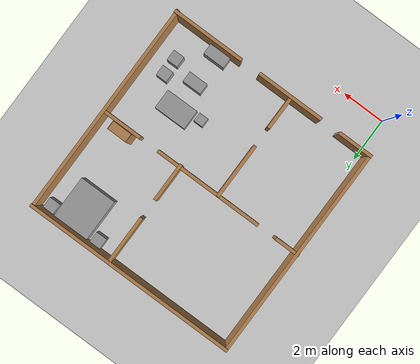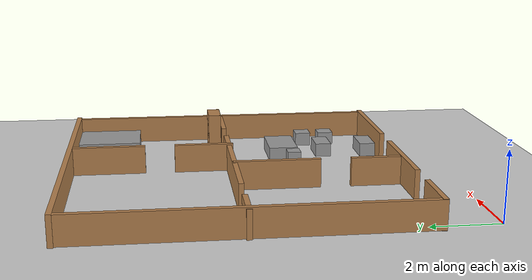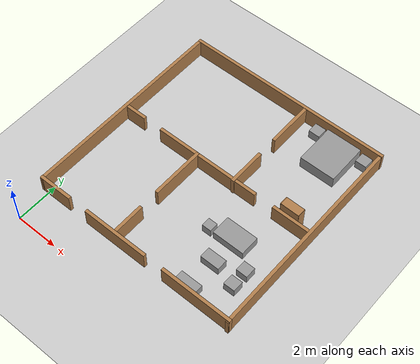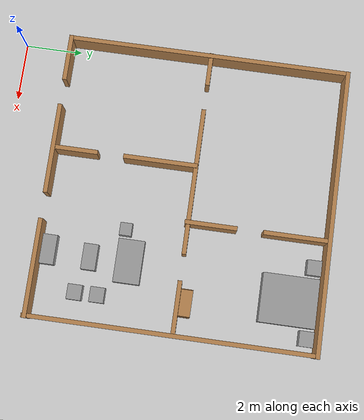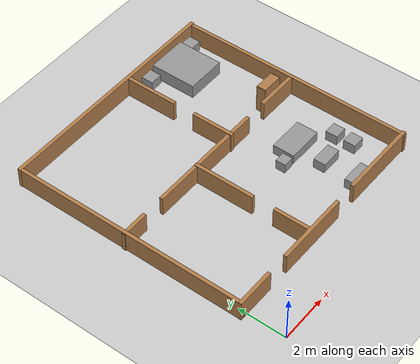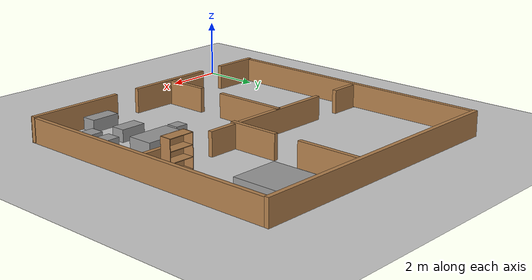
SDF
<sdf version="1.7">
 <world name="default">
  <model name="ground_plane">
   <static>1</static>
   <link name="link">
    <collision name="collision">
     <geometry><plane><normal>0 0 1</normal><size>100 100</size></plane></geometry>
     <surface>
      <contact><collide_bitmask>65535</collide_bitmask></contact>
      <friction><ode><mu>100</mu><mu2>50</mu2></ode></friction>
     </surface>
    </collision>
    <visual name="visual">
     <cast_shadows>0</cast_shadows>
     <geometry><plane><normal>0 0 1</normal><size>100 100</size></plane></geometry>
     <material>
      <script><uri>file://media/materials/scripts/gazebo.material</uri><name>Gazebo/Grey</name></script>
     </material>
    </visual>
   </link>
  </model>
  <model name="unit_box">
   <link name="link">
    <inertial>
     <mass>1</mass>
     <inertia>
      <ixx>0.166667</ixx>
      <ixy>0</ixy>
      <ixz>0</ixz>
      <iyy>0.166667</iyy>
      <iyz>0</iyz>
      <izz>0.166667</izz>
     </inertia>
    </inertial>
    <visual name="visual">
     <geometry><box><size>1.68417 1.93569 0.590711</size></box></geometry>
     <material>
      <script><name>Gazebo/Grey</name><uri>file://media/materials/scripts/gazebo.material</uri></script>
      <shader type="pixel"><normal_map>__default__</normal_map></shader>
      <ambient>0.933 0.933 0.925 1</ambient>
      <diffuse>0.7 0.7 0.7 1</diffuse>
      <specular>0.01 0.01 0.01 1</specular>
      <emissive>0 0 0 1</emissive>
     </material>
    </visual>
    <collision name="collision">
     <geometry><box><size>1.68417 1.93569 0.590711</size></box></geometry>
     <surface>
      <friction>
       <ode><mu>1</mu><mu2>1</mu2><fdir1>0 0 0</fdir1><slip1>0</slip1><slip2>0</slip2></ode>
       <torsional>
        <coefficient>1</coefficient>
        <patch_radius>0</patch_radius>
        <surface_radius>0</surface_radius>
        <use_patch_radius>1</use_patch_radius>
        <ode><slip>0</slip></ode>
       </torsional>
      </friction>
      <bounce><restitution_coefficient>0</restitution_coefficient><threshold>1e+06</threshold></bounce>
      <contact>
       <collide_without_contact>0</collide_without_contact>
       <collide_without_contact_bitmask>1</collide_without_contact_bitmask>
       <collide_bitmask>1</collide_bitmask>
       <ode>
        <soft_cfm>0</soft_cfm>
        <soft_erp>0.2</soft_erp>
        <kp>1e+13</kp>
        <kd>1</kd>
        <max_vel>0.01</max_vel>
        <min_depth>0</min_depth>
       </ode>
       <bullet>
        <split_impulse>1</split_impulse>
        <split_impulse_penetration_threshold>-0.01</split_impulse_penetration_threshold>
        <soft_cfm>0</soft_cfm>
        <soft_erp>0.2</soft_erp>
        <kp>1e+13</kp>
        <kd>1</kd>
       </bullet>
      </contact>
     </surface>
    </collision>
   </link>
   <static>0</static>
   <pose>7.86164 10.4166 0.295328 2.8e-05 0 0.001427</pose>
  </model>
  <model name="unit_box_clone">
   <link name="link">
    <inertial>
     <mass>1</mass>
     <inertia>
      <ixx>0.166667</ixx>
      <ixy>0</ixy>
      <ixz>0</ixz>
      <iyy>0.166667</iyy>
      <iyz>0</iyz>
      <izz>0.166667</izz>
     </inertia>
    </inertial>
    <visual name="visual">
     <geometry><box><size>0.525272 0.502179 0.423961</size></box></geometry>
     <material>
      <script><name>Gazebo/Grey</name><uri>file://media/materials/scripts/gazebo.material</uri></script>
      <shader type="pixel"><normal_map>__default__</normal_map></shader>
      <ambient>0.933 0.933 0.925 1</ambient>
      <diffuse>0.7 0.7 0.7 1</diffuse>
      <specular>0.01 0.01 0.01 1</specular>
      <emissive>0 0 0 1</emissive>
     </material>
    </visual>
    <collision name="collision">
     <geometry><box><size>0.525272 0.502179 0.423961</size></box></geometry>
     <surface>
      <friction>
       <ode><mu>1</mu><mu2>1</mu2><fdir1>0 0 0</fdir1><slip1>0</slip1><slip2>0</slip2></ode>
       <torsional>
        <coefficient>1</coefficient>
        <patch_radius>0</patch_radius>
        <surface_radius>0</surface_radius>
        <use_patch_radius>1</use_patch_radius>
        <ode><slip>0</slip></ode>
       </torsional>
      </friction>
      <bounce><restitution_coefficient>0</restitution_coefficient><threshold>1e+06</threshold></bounce>
      <contact>
       <collide_without_contact>0</collide_without_contact>
       <collide_without_contact_bitmask>1</collide_without_contact_bitmask>
       <collide_bitmask>1</collide_bitmask>
       <ode>
        <soft_cfm>0</soft_cfm>
        <soft_erp>0.2</soft_erp>
        <kp>1e+13</kp>
        <kd>1</kd>
        <max_vel>0.01</max_vel>
        <min_depth>0</min_depth>
       </ode>
       <bullet>
        <split_impulse>1</split_impulse>
        <split_impulse_penetration_threshold>-0.01</split_impulse_penetration_threshold>
        <soft_cfm>0</soft_cfm>
        <soft_erp>0.2</soft_erp>
        <kp>1e+13</kp>
        <kd>1</kd>
       </bullet>
      </contact>
     </surface>
    </collision>
   </link>
   <static>0</static>
   <pose>6.63512 11.1676 0.21198 0 0 -6e-06</pose>
  </model>
  <model name="bookshelf_clone_0_clone">
   <static>1</static>
   <link name="link">
    <inertial><mass>1</mass></inertial>
    <collision name="back">
     <pose>0 0.005 0.6 0 -0 0</pose>
     <geometry><box><size>0.9 0.01 1.2</size></box></geometry>
    </collision>
    <visual name="visual1">
     <pose>0 0.005 0.6 0 -0 0</pose>
     <geometry><box><size>0.9 0.01 1.2</size></box></geometry>
     <material>
      <script><uri>file://media/materials/scripts/gazebo.material</uri><name>Gazebo/Wood</name></script>
     </material>
    </visual>
    <collision name="left_side">
     <pose>0.45 -0.195 0.6 0 -0 0</pose>
     <geometry><box><size>0.02 0.4 1.2</size></box></geometry>
    </collision>
    <visual name="visual2">
     <pose>0.45 -0.195 0.6 0 -0 0</pose>
     <geometry><box><size>0.02 0.4 1.2</size></box></geometry>
     <material>
      <script><uri>file://media/materials/scripts/gazebo.material</uri><name>Gazebo/Wood</name></script>
     </material>
    </visual>
    <collision name="right_side">
     <pose>-0.45 -0.195 0.6 0 -0 0</pose>
     <geometry><box><size>0.02 0.4 1.2</size></box></geometry>
    </collision>
    <visual name="visual3">
     <pose>-0.45 -0.195 0.6 0 -0 0</pose>
     <geometry><box><size>0.02 0.4 1.2</size></box></geometry>
     <material>
      <script><uri>file://media/materials/scripts/gazebo.material</uri><name>Gazebo/Wood</name></script>
     </material>
    </visual>
    <collision name="bottom">
     <pose>0 -0.195 0.03 0 -0 0</pose>
     <geometry><box><size>0.88 0.4 0.06</size></box></geometry>
    </collision>
    <visual name="visual4">
     <pose>0 -0.195 0.03 0 -0 0</pose>
     <geometry><box><size>0.88 0.4 0.06</size></box></geometry>
     <material>
      <script><uri>file://media/materials/scripts/gazebo.material</uri><name>Gazebo/Wood</name></script>
     </material>
    </visual>
    <collision name="top">
     <pose>0 -0.195 1.19 0 -0 0</pose>
     <geometry><box><size>0.88 0.4 0.02</size></box></geometry>
    </collision>
    <visual name="visual5">
     <pose>0 -0.195 1.19 0 -0 0</pose>
     <geometry><box><size>0.88 0.4 0.02</size></box></geometry>
     <material>
      <script><uri>file://media/materials/scripts/gazebo.material</uri><name>Gazebo/Wood</name></script>
     </material>
    </visual>
    <collision name="low_shelf">
     <pose>0 -0.195 0.43 0 -0 0</pose>
     <geometry><box><size>0.88 0.4 0.02</size></box></geometry>
    </collision>
    <visual name="visual6">
     <pose>0 -0.195 0.43 0 -0 0</pose>
     <geometry><box><size>0.88 0.4 0.02</size></box></geometry>
     <material>
      <script><uri>file://media/materials/scripts/gazebo.material</uri><name>Gazebo/Wood</name></script>
     </material>
    </visual>
    <collision name="high_shelf">
     <pose>0 -0.195 0.8 0 -0 0</pose>
     <geometry><box><size>0.88 0.4 0.02</size></box></geometry>
    </collision>
    <visual name="visual7">
     <pose>0 -0.195 0.8 0 -0 0</pose>
     <geometry><box><size>0.88 0.4 0.02</size></box></geometry>
     <material>
      <script><uri>file://media/materials/scripts/gazebo.material</uri><name>Gazebo/Wood</name></script>
     </material>
    </visual>
   </link>
   <pose>8.45272 6.7707 0 0 -0 3.1325</pose>
  </model>
  <model name="unit_box_clone_clone_2">
   <link name="link">
    <inertial>
     <mass>1</mass>
     <inertia>
      <ixx>0.166667</ixx>
      <ixy>0</ixy>
      <ixz>0</ixz>
      <iyy>0.166667</iyy>
      <iyz>0</iyz>
      <izz>0.166667</izz>
     </inertia>
    </inertial>
    <visual name="visual">
     <geometry><box><size>0.525272 0.502179 0.423961</size></box></geometry>
     <material>
      <script><name>Gazebo/Grey</name><uri>file://media/materials/scripts/gazebo.material</uri></script>
      <shader type="pixel"><normal_map>__default__</normal_map></shader>
      <ambient>0.933 0.933 0.925 1</ambient>
      <diffuse>0.7 0.7 0.7 1</diffuse>
      <specular>0.01 0.01 0.01 1</specular>
      <emissive>0 0 0 1</emissive>
     </material>
    </visual>
    <collision name="collision">
     <geometry><box><size>0.525272 0.502179 0.423961</size></box></geometry>
     <surface>
      <friction>
       <ode><mu>1</mu><mu2>1</mu2><fdir1>0 0 0</fdir1><slip1>0</slip1><slip2>0</slip2></ode>
       <torsional>
        <coefficient>1</coefficient>
        <patch_radius>0</patch_radius>
        <surface_radius>0</surface_radius>
        <use_patch_radius>1</use_patch_radius>
        <ode><slip>0</slip></ode>
       </torsional>
      </friction>
      <bounce><restitution_coefficient>0</restitution_coefficient><threshold>1e+06</threshold></bounce>
      <contact>
       <collide_without_contact>0</collide_without_contact>
       <collide_without_contact_bitmask>1</collide_without_contact_bitmask>
       <collide_bitmask>1</collide_bitmask>
       <ode>
        <soft_cfm>0</soft_cfm>
        <soft_erp>0.2</soft_erp>
        <kp>1e+13</kp>
        <kd>1</kd>
        <max_vel>0.01</max_vel>
        <min_depth>0</min_depth>
       </ode>
       <bullet>
        <split_impulse>1</split_impulse>
        <split_impulse_penetration_threshold>-0.01</split_impulse_penetration_threshold>
        <soft_cfm>0</soft_cfm>
        <soft_erp>0.2</soft_erp>
        <kp>1e+13</kp>
        <kd>1</kd>
       </bullet>
      </contact>
     </surface>
    </collision>
   </link>
   <static>0</static>
   <pose>8.57018 3.15894 0.21198 0 0 -6e-06</pose>
  </model>
  <model name="unit_box_clone_clone_3">
   <link name="link">
    <inertial>
     <mass>1</mass>
     <inertia>
      <ixx>0.166667</ixx>
      <ixy>0</ixy>
      <ixz>0</ixz>
      <iyy>0.166667</iyy>
      <iyz>0</iyz>
      <izz>0.166667</izz>
     </inertia>
    </inertial>
    <visual name="visual">
     <geometry><box><size>1.51241 0.912395 0.423961</size></box></geometry>
     <material>
      <script><name>Gazebo/Grey</name><uri>file://media/materials/scripts/gazebo.material</uri></script>
      <shader type="pixel"><normal_map>__default__</normal_map></shader>
      <ambient>0.933 0.933 0.925 1</ambient>
      <diffuse>0.7 0.7 0.7 1</diffuse>
      <specular>0.01 0.01 0.01 1</specular>
      <emissive>0 0 0 1</emissive>
     </material>
    </visual>
    <collision name="collision">
     <geometry><box><size>1.51241 0.912395 0.423961</size></box></geometry>
     <surface>
      <friction>
       <ode><mu>1</mu><mu2>1</mu2><fdir1>0 0 0</fdir1><slip1>0</slip1><slip2>0</slip2></ode>
       <torsional>
        <coefficient>1</coefficient>
        <patch_radius>0</patch_radius>
        <surface_radius>0</surface_radius>
        <use_patch_radius>1</use_patch_radius>
        <ode><slip>0</slip></ode>
       </torsional>
      </friction>
      <bounce><restitution_coefficient>0</restitution_coefficient><threshold>1e+06</threshold></bounce>
      <contact>
       <collide_without_contact>0</collide_without_contact>
       <collide_without_contact_bitmask>1</collide_without_contact_bitmask>
       <collide_bitmask>1</collide_bitmask>
       <ode>
        <soft_cfm>0</soft_cfm>
        <soft_erp>0.2</soft_erp>
        <kp>1e+13</kp>
        <kd>1</kd>
        <max_vel>0.01</max_vel>
        <min_depth>0</min_depth>
       </ode>
       <bullet>
        <split_impulse>1</split_impulse>
        <split_impulse_penetration_threshold>-0.01</split_impulse_penetration_threshold>
        <soft_cfm>0</soft_cfm>
        <soft_erp>0.2</soft_erp>
        <kp>1e+13</kp>
        <kd>1</kd>
       </bullet>
      </contact>
     </surface>
    </collision>
   </link>
   <static>0</static>
   <pose>7.28625 4.84842 0.211976 1e-05 0 -1.5e-05</pose>
  </model>
  <model name="unit_box_clone_clone_4">
   <link name="link">
    <inertial>
     <mass>1</mass>
     <inertia>
      <ixx>0.166667</ixx>
      <ixy>0</ixy>
      <ixz>0</ixz>
      <iyy>0.166667</iyy>
      <iyz>0</iyz>
      <izz>0.166667</izz>
     </inertia>
    </inertial>
    <visual name="visual">
     <geometry><box><size>0.899816 0.502179 0.423961</size></box></geometry>
     <material>
      <script><name>Gazebo/Grey</name><uri>file://media/materials/scripts/gazebo.material</uri></script>
      <shader type="pixel"><normal_map>__default__</normal_map></shader>
      <ambient>0.933 0.933 0.925 1</ambient>
      <diffuse>0.7 0.7 0.7 1</diffuse>
      <specular>0.01 0.01 0.01 1</specular>
      <emissive>0 0 0 1</emissive>
     </material>
    </visual>
    <collision name="collision">
     <geometry><box><size>0.899816 0.502179 0.423961</size></box></geometry>
     <surface>
      <friction>
       <ode><mu>1</mu><mu2>1</mu2><fdir1>0 0 0</fdir1><slip1>0</slip1><slip2>0</slip2></ode>
       <torsional>
        <coefficient>1</coefficient>
        <patch_radius>0</patch_radius>
        <surface_radius>0</surface_radius>
        <use_patch_radius>1</use_patch_radius>
        <ode><slip>0</slip></ode>
       </torsional>
      </friction>
      <bounce><restitution_coefficient>0</restitution_coefficient><threshold>1e+06</threshold></bounce>
      <contact>
       <collide_without_contact>0</collide_without_contact>
       <collide_without_contact_bitmask>1</collide_without_contact_bitmask>
       <collide_bitmask>1</collide_bitmask>
       <ode>
        <soft_cfm>0</soft_cfm>
        <soft_erp>0.2</soft_erp>
        <kp>1e+13</kp>
        <kd>1</kd>
        <max_vel>0.01</max_vel>
        <min_depth>0</min_depth>
       </ode>
       <bullet>
        <split_impulse>1</split_impulse>
        <split_impulse_penetration_threshold>-0.01</split_impulse_penetration_threshold>
        <soft_cfm>0</soft_cfm>
        <soft_erp>0.2</soft_erp>
        <kp>1e+13</kp>
        <kd>1</kd>
       </bullet>
      </contact>
     </surface>
    </collision>
   </link>
   <static>0</static>
   <pose>7.31194 3.48853 0.21198 0 0 -6e-06</pose>
  </model>
  <model name="unit_box_clone_clone_6">
   <link name="link">
    <inertial>
     <mass>1</mass>
     <inertia>
      <ixx>0.166667</ixx>
      <ixy>0</ixy>
      <ixz>0</ixz>
      <iyy>0.166667</iyy>
      <iyz>0</iyz>
      <izz>0.166667</izz>
     </inertia>
    </inertial>
    <visual name="visual">
     <geometry><box><size>0.441981 0.41866 0.423961</size></box></geometry>
     <material>
      <script><name>Gazebo/Grey</name><uri>file://media/materials/scripts/gazebo.material</uri></script>
      <shader type="pixel"><normal_map>__default__</normal_map></shader>
      <ambient>0.933 0.933 0.925 1</ambient>
      <diffuse>0.7 0.7 0.7 1</diffuse>
      <specular>0.01 0.01 0.01 1</specular>
      <emissive>0 0 0 1</emissive>
     </material>
    </visual>
    <collision name="collision">
     <geometry><box><size>0.441981 0.41866 0.423961</size></box></geometry>
     <surface>
      <friction>
       <ode><mu>1</mu><mu2>1</mu2><fdir1>0 0 0</fdir1><slip1>0</slip1><slip2>0</slip2></ode>
       <torsional>
        <coefficient>1</coefficient>
        <patch_radius>0</patch_radius>
        <surface_radius>0</surface_radius>
        <use_patch_radius>1</use_patch_radius>
        <ode><slip>0</slip></ode>
       </torsional>
      </friction>
      <bounce><restitution_coefficient>0</restitution_coefficient><threshold>1e+06</threshold></bounce>
      <contact>
       <collide_without_contact>0</collide_without_contact>
       <collide_without_contact_bitmask>1</collide_without_contact_bitmask>
       <collide_bitmask>1</collide_bitmask>
       <ode>
        <soft_cfm>0</soft_cfm>
        <soft_erp>0.2</soft_erp>
        <kp>1e+13</kp>
        <kd>1</kd>
        <max_vel>0.01</max_vel>
        <min_depth>0</min_depth>
       </ode>
       <bullet>
        <split_impulse>1</split_impulse>
        <split_impulse_penetration_threshold>-0.01</split_impulse_penetration_threshold>
        <soft_cfm>0</soft_cfm>
        <soft_erp>0.2</soft_erp>
        <kp>1e+13</kp>
        <kd>1</kd>
       </bullet>
      </contact>
     </surface>
    </collision>
   </link>
   <static>0</static>
   <pose>6.1965 4.57944 0.21198 0 0 -6e-06</pose>
  </model>
  <model name="unit_box_clone_clone_7">
   <link name="link">
    <inertial>
     <mass>1</mass>
     <inertia>
      <ixx>0.166667</ixx>
      <ixy>0</ixy>
      <ixz>0</ixz>
      <iyy>0.166667</iyy>
      <iyz>0</iyz>
      <izz>0.166667</izz>
     </inertia>
    </inertial>
    <visual name="visual">
     <geometry><box><size>1.0251 0.502179 0.423961</size></box></geometry>
     <material>
      <script><name>Gazebo/Grey</name><uri>file://media/materials/scripts/gazebo.material</uri></script>
      <shader type="pixel"><normal_map>__default__</normal_map></shader>
      <ambient>0.933 0.933 0.925 1</ambient>
      <diffuse>0.7 0.7 0.7 1</diffuse>
      <specular>0.01 0.01 0.01 1</specular>
      <emissive>0 0 0 1</emissive>
     </material>
    </visual>
    <collision name="collision">
     <geometry><box><size>1.0251 0.502179 0.423961</size></box></geometry>
     <surface>
      <friction>
       <ode><mu>1</mu><mu2>1</mu2><fdir1>0 0 0</fdir1><slip1>0</slip1><slip2>0</slip2></ode>
       <torsional>
        <coefficient>1</coefficient>
        <patch_radius>0</patch_radius>
        <surface_radius>0</surface_radius>
        <use_patch_radius>1</use_patch_radius>
        <ode><slip>0</slip></ode>
       </torsional>
      </friction>
      <bounce><restitution_coefficient>0</restitution_coefficient><threshold>1e+06</threshold></bounce>
      <contact>
       <collide_without_contact>0</collide_without_contact>
       <collide_without_contact_bitmask>1</collide_without_contact_bitmask>
       <collide_bitmask>1</collide_bitmask>
       <ode>
        <soft_cfm>0</soft_cfm>
        <soft_erp>0.2</soft_erp>
        <kp>1e+13</kp>
        <kd>1</kd>
        <max_vel>0.01</max_vel>
        <min_depth>0</min_depth>
       </ode>
       <bullet>
        <split_impulse>1</split_impulse>
        <split_impulse_penetration_threshold>-0.01</split_impulse_penetration_threshold>
        <soft_cfm>0</soft_cfm>
        <soft_erp>0.2</soft_erp>
        <kp>1e+13</kp>
        <kd>1</kd>
       </bullet>
      </contact>
     </surface>
    </collision>
   </link>
   <static>0</static>
   <pose>7.24442 2.04094 0.21198 0 -0 2.6e-05</pose>
  </model>
  <model name="robocup.world">
   <link name="Wall_0">
    <pose>0.013375 -4.925 -0.162632 0 -0 0</pose>
    <inertial>
     <mass>0.344809</mass>
     <inertia>
      <ixx>0.0219992</ixx>
      <ixy>0</ixy>
      <ixz>0</ixz>
      <iyy>0.352168</iyy>
      <iyz>0</iyz>
      <izz>0.331462</izz>
     </inertia>
    </inertial>
    <visual name="Wall_0_Visual_1">
     <pose>-0.873451 0 0.6 0 -0 0</pose>
     <geometry><box><size>3.16074 0.15 0.862041</size></box></geometry>
     <material>
      <script><uri>file://media/materials/scripts/gazebo.material</uri><name>Gazebo/Wood</name></script>
      <ambient>1 1 1 1</ambient>
      <shader type="pixel"><normal_map>__default__</normal_map></shader>
      <diffuse>1 1 1 1</diffuse>
      <specular>0.2 0.2 0.2 1</specular>
      <emissive>0 0 0 1</emissive>
     </material>
     <meta><layer>0</layer></meta>
    </visual>
    <visual name="Wall_0_Visual_0">
     <pose>-4.17691 0 0.6 0 -0 0</pose>
     <geometry><box><size>1.64618 0.15 0.862041</size></box></geometry>
     <material>
      <script><uri>file://media/materials/scripts/gazebo.material</uri><name>Gazebo/Wood</name></script>
      <ambient>1 1 1 1</ambient>
      <shader type="pixel"><normal_map>__default__</normal_map></shader>
      <diffuse>1 1 1 1</diffuse>
      <specular>0.2 0.2 0.2 1</specular>
      <emissive>0 0 0 1</emissive>
     </material>
     <meta><layer>0</layer></meta>
    </visual>
    <visual name="Wall_0_Visual_2">
     <pose>3.30346 0 0.6 0 -0 0</pose>
     <geometry><box><size>3.39308 0.15 0.862041</size></box></geometry>
     <material>
      <script><uri>file://media/materials/scripts/gazebo.material</uri><name>Gazebo/Wood</name></script>
      <ambient>1 1 1 1</ambient>
      <shader type="pixel"><normal_map>__default__</normal_map></shader>
      <diffuse>1 1 1 1</diffuse>
      <specular>0.2 0.2 0.2 1</specular>
      <emissive>0 0 0 1</emissive>
     </material>
     <meta><layer>0</layer></meta>
    </visual>
    <collision name="Wall_0_Collision_1">
     <pose>-0.873451 0 0.6 0 -0 0</pose>
     <geometry><box><size>3.16074 0.15 0.862041</size></box></geometry>
     <surface>
      <friction>
       <ode><mu>1</mu><mu2>1</mu2><fdir1>0 0 0</fdir1><slip1>0</slip1><slip2>0</slip2></ode>
       <torsional>
        <coefficient>1</coefficient>
        <patch_radius>0</patch_radius>
        <surface_radius>0</surface_radius>
        <use_patch_radius>1</use_patch_radius>
        <ode><slip>0</slip></ode>
       </torsional>
      </friction>
      <bounce><restitution_coefficient>0</restitution_coefficient><threshold>1e+06</threshold></bounce>
      <contact>
       <collide_without_contact>0</collide_without_contact>
       <collide_without_contact_bitmask>1</collide_without_contact_bitmask>
       <collide_bitmask>1</collide_bitmask>
       <ode>
        <soft_cfm>0</soft_cfm>
        <soft_erp>0.2</soft_erp>
        <kp>1e+13</kp>
        <kd>1</kd>
        <max_vel>0.01</max_vel>
        <min_depth>0</min_depth>
       </ode>
       <bullet>
        <split_impulse>1</split_impulse>
        <split_impulse_penetration_threshold>-0.01</split_impulse_penetration_threshold>
        <soft_cfm>0</soft_cfm>
        <soft_erp>0.2</soft_erp>
        <kp>1e+13</kp>
        <kd>1</kd>
       </bullet>
      </contact>
     </surface>
    </collision>
    <collision name="Wall_0_Collision_0">
     <pose>-4.17691 0 0.6 0 -0 0</pose>
     <geometry><box><size>1.64618 0.15 0.862041</size></box></geometry>
     <surface>
      <friction>
       <ode><mu>1</mu><mu2>1</mu2><fdir1>0 0 0</fdir1><slip1>0</slip1><slip2>0</slip2></ode>
       <torsional>
        <coefficient>1</coefficient>
        <patch_radius>0</patch_radius>
        <surface_radius>0</surface_radius>
        <use_patch_radius>1</use_patch_radius>
        <ode><slip>0</slip></ode>
       </torsional>
      </friction>
      <bounce><restitution_coefficient>0</restitution_coefficient><threshold>1e+06</threshold></bounce>
      <contact>
       <collide_without_contact>0</collide_without_contact>
       <collide_without_contact_bitmask>1</collide_without_contact_bitmask>
       <collide_bitmask>1</collide_bitmask>
       <ode>
        <soft_cfm>0</soft_cfm>
        <soft_erp>0.2</soft_erp>
        <kp>1e+13</kp>
        <kd>1</kd>
        <max_vel>0.01</max_vel>
        <min_depth>0</min_depth>
       </ode>
       <bullet>
        <split_impulse>1</split_impulse>
        <split_impulse_penetration_threshold>-0.01</split_impulse_penetration_threshold>
        <soft_cfm>0</soft_cfm>
        <soft_erp>0.2</soft_erp>
        <kp>1e+13</kp>
        <kd>1</kd>
       </bullet>
      </contact>
     </surface>
    </collision>
    <collision name="Wall_0_Collision_2">
     <pose>3.30346 0 0.6 0 -0 0</pose>
     <geometry><box><size>3.39308 0.15 0.862041</size></box></geometry>
     <surface>
      <friction>
       <ode><mu>1</mu><mu2>1</mu2><fdir1>0 0 0</fdir1><slip1>0</slip1><slip2>0</slip2></ode>
       <torsional>
        <coefficient>1</coefficient>
        <patch_radius>0</patch_radius>
        <surface_radius>0</surface_radius>
        <use_patch_radius>1</use_patch_radius>
        <ode><slip>0</slip></ode>
       </torsional>
      </friction>
      <bounce><restitution_coefficient>0</restitution_coefficient><threshold>1e+06</threshold></bounce>
      <contact>
       <collide_without_contact>0</collide_without_contact>
       <collide_without_contact_bitmask>1</collide_without_contact_bitmask>
       <collide_bitmask>1</collide_bitmask>
       <ode>
        <soft_cfm>0</soft_cfm>
        <soft_erp>0.2</soft_erp>
        <kp>1e+13</kp>
        <kd>1</kd>
        <max_vel>0.01</max_vel>
        <min_depth>0</min_depth>
       </ode>
       <bullet>
        <split_impulse>1</split_impulse>
        <split_impulse_penetration_threshold>-0.01</split_impulse_penetration_threshold>
        <soft_cfm>0</soft_cfm>
        <soft_erp>0.2</soft_erp>
        <kp>1e+13</kp>
        <kd>1</kd>
       </bullet>
      </contact>
     </surface>
    </collision>
   </link>
   <link name="Wall_1">
    <pose>4.92094 -0.043283 -0.196713 0 -0 1.5708</pose>
    <inertial>
     <mass>0.338866</mass>
     <inertia>
      <ixx>0.0209021</ixx>
      <ixy>0</ixy>
      <ixz>0</ixz>
      <iyy>2.84415</iyy>
      <iyz>0</iyz>
      <izz>2.82452</izz>
     </inertia>
    </inertial>
    <visual name="Wall_1_Visual">
     <pose>0 0 0.6 0 -0 0</pose>
     <geometry><box><size>10 0.15 0.847166</size></box></geometry>
     <material>
      <script><uri>file://media/materials/scripts/gazebo.material</uri><name>Gazebo/Wood</name></script>
      <ambient>1 1 1 1</ambient>
      <shader type="pixel"><normal_map>__default__</normal_map></shader>
      <diffuse>1 1 1 1</diffuse>
      <specular>0.2 0.2 0.2 1</specular>
      <emissive>0 0 0 1</emissive>
     </material>
     <meta><layer>0</layer></meta>
    </visual>
    <collision name="Wall_1_Collision">
     <pose>0 0 0.6 0 -0 0</pose>
     <geometry><box><size>10 0.15 0.847166</size></box></geometry>
     <surface>
      <friction>
       <ode><mu>1</mu><mu2>1</mu2><fdir1>0 0 0</fdir1><slip1>0</slip1><slip2>0</slip2></ode>
       <torsional>
        <coefficient>1</coefficient>
        <patch_radius>0</patch_radius>
        <surface_radius>0</surface_radius>
        <use_patch_radius>1</use_patch_radius>
        <ode><slip>0</slip></ode>
       </torsional>
      </friction>
      <bounce><restitution_coefficient>0</restitution_coefficient><threshold>1e+06</threshold></bounce>
      <contact>
       <collide_without_contact>0</collide_without_contact>
       <collide_without_contact_bitmask>1</collide_without_contact_bitmask>
       <collide_bitmask>1</collide_bitmask>
       <ode>
        <soft_cfm>0</soft_cfm>
        <soft_erp>0.2</soft_erp>
        <kp>1e+13</kp>
        <kd>1</kd>
        <max_vel>0.01</max_vel>
        <min_depth>0</min_depth>
       </ode>
       <bullet>
        <split_impulse>1</split_impulse>
        <split_impulse_penetration_threshold>-0.01</split_impulse_penetration_threshold>
        <soft_cfm>0</soft_cfm>
        <soft_erp>0.2</soft_erp>
        <kp>1e+13</kp>
        <kd>1</kd>
       </bullet>
      </contact>
     </surface>
    </collision>
   </link>
   <link name="Wall_19">
    <pose>-0.013376 0.072183 -0.196244 0 -0 0</pose>
    <inertial>
     <inertia><ixx>0</ixx><ixy>0</ixy><ixz>0</ixz><iyy>0</iyy><iyz>0</iyz><izz>0</izz></inertia>
     <mass>0</mass>
    </inertial>
    <visual name="Wall_19_Visual_1">
     <pose>-0.373125 0 0.6 0 -0 0</pose>
     <geometry><box><size>5.10784 0.15 0.82227</size></box></geometry>
     <material>
      <script><uri>file://media/materials/scripts/gazebo.material</uri><name>Gazebo/Wood</name></script>
      <ambient>1 1 1 1</ambient>
      <shader type="pixel"><normal_map>__default__</normal_map></shader>
      <diffuse>1 1 1 1</diffuse>
      <specular>0.2 0.2 0.2 1</specular>
      <emissive>0 0 0 1</emissive>
     </material>
     <meta><layer>0</layer></meta>
    </visual>
    <visual name="Wall_19_Visual_2">
     <pose>4.0404 0 0.6 0 -0 0</pose>
     <geometry><box><size>1.91921 0.15 0.82227</size></box></geometry>
     <material>
      <script><uri>file://media/materials/scripts/gazebo.material</uri><name>Gazebo/Wood</name></script>
      <ambient>1 1 1 1</ambient>
      <shader type="pixel"><normal_map>__default__</normal_map></shader>
      <diffuse>1 1 1 1</diffuse>
      <specular>0.2 0.2 0.2 1</specular>
      <emissive>0 0 0 1</emissive>
     </material>
     <meta><layer>0</layer></meta>
    </visual>
    <visual name="Wall_19_Visual_0">
     <pose>-4.41352 0 0.6 0 -0 0</pose>
     <geometry><box><size>1.17296 0.15 0.82227</size></box></geometry>
     <material>
      <script><uri>file://media/materials/scripts/gazebo.material</uri><name>Gazebo/Wood</name></script>
      <ambient>1 1 1 1</ambient>
      <shader type="pixel"><normal_map>__default__</normal_map></shader>
      <diffuse>1 1 1 1</diffuse>
      <specular>0.2 0.2 0.2 1</specular>
      <emissive>0 0 0 1</emissive>
     </material>
     <meta><layer>0</layer></meta>
    </visual>
    <collision name="Wall_19_Collision_2">
     <pose>4.0404 0 0.6 0 -0 0</pose>
     <geometry><box><size>1.91921 0.15 0.82227</size></box></geometry>
     <surface>
      <friction>
       <ode><mu>1</mu><mu2>1</mu2><fdir1>0 0 0</fdir1><slip1>0</slip1><slip2>0</slip2></ode>
       <torsional>
        <coefficient>1</coefficient>
        <patch_radius>0</patch_radius>
        <surface_radius>0</surface_radius>
        <use_patch_radius>1</use_patch_radius>
        <ode><slip>0</slip></ode>
       </torsional>
      </friction>
      <bounce><restitution_coefficient>0</restitution_coefficient><threshold>1e+06</threshold></bounce>
      <contact>
       <collide_without_contact>0</collide_without_contact>
       <collide_without_contact_bitmask>1</collide_without_contact_bitmask>
       <collide_bitmask>1</collide_bitmask>
       <ode>
        <soft_cfm>0</soft_cfm>
        <soft_erp>0.2</soft_erp>
        <kp>1e+13</kp>
        <kd>1</kd>
        <max_vel>0.01</max_vel>
        <min_depth>0</min_depth>
       </ode>
       <bullet>
        <split_impulse>1</split_impulse>
        <split_impulse_penetration_threshold>-0.01</split_impulse_penetration_threshold>
        <soft_cfm>0</soft_cfm>
        <soft_erp>0.2</soft_erp>
        <kp>1e+13</kp>
        <kd>1</kd>
       </bullet>
      </contact>
     </surface>
    </collision>
    <collision name="Wall_19_Collision_0">
     <pose>-4.41352 0 0.6 0 -0 0</pose>
     <geometry><box><size>1.17296 0.15 0.82227</size></box></geometry>
     <surface>
      <friction>
       <ode><mu>1</mu><mu2>1</mu2><fdir1>0 0 0</fdir1><slip1>0</slip1><slip2>0</slip2></ode>
       <torsional>
        <coefficient>1</coefficient>
        <patch_radius>0</patch_radius>
        <surface_radius>0</surface_radius>
        <use_patch_radius>1</use_patch_radius>
        <ode><slip>0</slip></ode>
       </torsional>
      </friction>
      <bounce><restitution_coefficient>0</restitution_coefficient><threshold>1e+06</threshold></bounce>
      <contact>
       <collide_without_contact>0</collide_without_contact>
       <collide_without_contact_bitmask>1</collide_without_contact_bitmask>
       <collide_bitmask>1</collide_bitmask>
       <ode>
        <soft_cfm>0</soft_cfm>
        <soft_erp>0.2</soft_erp>
        <kp>1e+13</kp>
        <kd>1</kd>
        <max_vel>0.01</max_vel>
        <min_depth>0</min_depth>
       </ode>
       <bullet>
        <split_impulse>1</split_impulse>
        <split_impulse_penetration_threshold>-0.01</split_impulse_penetration_threshold>
        <soft_cfm>0</soft_cfm>
        <soft_erp>0.2</soft_erp>
        <kp>1e+13</kp>
        <kd>1</kd>
       </bullet>
      </contact>
     </surface>
    </collision>
    <collision name="Wall_19_Collision_1">
     <pose>-0.373125 0 0.6 0 -0 0</pose>
     <geometry><box><size>5.10784 0.15 0.82227</size></box></geometry>
     <surface>
      <friction>
       <ode><mu>1</mu><mu2>1</mu2><fdir1>0 0 0</fdir1><slip1>0</slip1><slip2>0</slip2></ode>
       <torsional>
        <coefficient>1</coefficient>
        <patch_radius>0</patch_radius>
        <surface_radius>0</surface_radius>
        <use_patch_radius>1</use_patch_radius>
        <ode><slip>0</slip></ode>
       </torsional>
      </friction>
      <bounce><restitution_coefficient>0</restitution_coefficient><threshold>1e+06</threshold></bounce>
      <contact>
       <collide_without_contact>0</collide_without_contact>
       <collide_without_contact_bitmask>1</collide_without_contact_bitmask>
       <collide_bitmask>1</collide_bitmask>
       <ode>
        <soft_cfm>0</soft_cfm>
        <soft_erp>0.2</soft_erp>
        <kp>1e+13</kp>
        <kd>1</kd>
        <max_vel>0.01</max_vel>
        <min_depth>0</min_depth>
       </ode>
       <bullet>
        <split_impulse>1</split_impulse>
        <split_impulse_penetration_threshold>-0.01</split_impulse_penetration_threshold>
        <soft_cfm>0</soft_cfm>
        <soft_erp>0.2</soft_erp>
        <kp>1e+13</kp>
        <kd>1</kd>
       </bullet>
      </contact>
     </surface>
    </collision>
   </link>
   <link name="Wall_2">
    <pose>0.013375 4.925 -0.173521 0 -0 3.14159</pose>
    <inertial>
     <mass>0.34639</mass>
     <inertia>
      <ixx>0.0222962</ixx>
      <ixy>0</ixy>
      <ixz>0</ixz>
      <iyy>2.90823</iyy>
      <iyz>0</iyz>
      <izz>2.88723</izz>
     </inertia>
    </inertial>
    <visual name="Wall_2_Visual">
     <pose>0 0 0.6 0 -0 0</pose>
     <geometry><box><size>10 0.15 0.865973</size></box></geometry>
     <material>
      <script><uri>file://media/materials/scripts/gazebo.material</uri><name>Gazebo/Wood</name></script>
      <ambient>1 1 1 1</ambient>
      <shader type="pixel"><normal_map>__default__</normal_map></shader>
      <diffuse>1 1 1 1</diffuse>
      <specular>0.2 0.2 0.2 1</specular>
      <emissive>0 0 0 1</emissive>
     </material>
     <meta><layer>0</layer></meta>
    </visual>
    <collision name="Wall_2_Collision">
     <pose>0 0 0.6 0 -0 0</pose>
     <geometry><box><size>10 0.15 0.865973</size></box></geometry>
     <surface>
      <friction>
       <ode><mu>1</mu><mu2>1</mu2><fdir1>0 0 0</fdir1><slip1>0</slip1><slip2>0</slip2></ode>
       <torsional>
        <coefficient>1</coefficient>
        <patch_radius>0</patch_radius>
        <surface_radius>0</surface_radius>
        <use_patch_radius>1</use_patch_radius>
        <ode><slip>0</slip></ode>
       </torsional>
      </friction>
      <bounce><restitution_coefficient>0</restitution_coefficient><threshold>1e+06</threshold></bounce>
      <contact>
       <collide_without_contact>0</collide_without_contact>
       <collide_without_contact_bitmask>1</collide_without_contact_bitmask>
       <collide_bitmask>1</collide_bitmask>
       <ode>
        <soft_cfm>0</soft_cfm>
        <soft_erp>0.2</soft_erp>
        <kp>1e+13</kp>
        <kd>1</kd>
        <max_vel>0.01</max_vel>
        <min_depth>0</min_depth>
       </ode>
       <bullet>
        <split_impulse>1</split_impulse>
        <split_impulse_penetration_threshold>-0.01</split_impulse_penetration_threshold>
        <soft_cfm>0</soft_cfm>
        <soft_erp>0.2</soft_erp>
        <kp>1e+13</kp>
        <kd>1</kd>
       </bullet>
      </contact>
     </surface>
    </collision>
   </link>
   <link name="Wall_21">
    <pose>1.06162 2.45181 -0.176161 0 0 -1.5708</pose>
    <inertial>
     <mass>0.343417</mass>
     <inertia>
      <ixx>0.0217376</ixx>
      <ixy>0</ixy>
      <ixz>0</ixz>
      <iyy>0.172031</iyy>
      <iyz>0</iyz>
      <izz>0.151581</izz>
     </inertia>
    </inertial>
    <visual name="Wall_21_Visual_0">
     <pose>-1.35172 0 0.6 0 -0 0</pose>
     <geometry><box><size>2.29656 0.15 0.858531</size></box></geometry>
     <material>
      <script><uri>file://media/materials/scripts/gazebo.material</uri><name>Gazebo/Wood</name></script>
      <ambient>1 1 1 1</ambient>
      <shader type="pixel"><normal_map>__default__</normal_map></shader>
      <diffuse>1 1 1 1</diffuse>
      <specular>0.2 0.2 0.2 1</specular>
      <emissive>0 0 0 1</emissive>
     </material>
     <meta><layer>0</layer></meta>
    </visual>
    <visual name="Wall_21_Visual_1">
     <pose>1.59828 0 0.6 0 -0 0</pose>
     <geometry><box><size>1.80344 0.15 0.858531</size></box></geometry>
     <material>
      <script><uri>file://media/materials/scripts/gazebo.material</uri><name>Gazebo/Wood</name></script>
      <ambient>1 1 1 1</ambient>
      <shader type="pixel"><normal_map>__default__</normal_map></shader>
      <diffuse>1 1 1 1</diffuse>
      <specular>0.2 0.2 0.2 1</specular>
      <emissive>0 0 0 1</emissive>
     </material>
     <meta><layer>0</layer></meta>
    </visual>
    <collision name="Wall_21_Collision_1">
     <pose>1.59828 0 0.6 0 -0 0</pose>
     <geometry><box><size>1.80344 0.15 0.858531</size></box></geometry>
     <surface>
      <friction>
       <ode><mu>1</mu><mu2>1</mu2><fdir1>0 0 0</fdir1><slip1>0</slip1><slip2>0</slip2></ode>
       <torsional>
        <coefficient>1</coefficient>
        <patch_radius>0</patch_radius>
        <surface_radius>0</surface_radius>
        <use_patch_radius>1</use_patch_radius>
        <ode><slip>0</slip></ode>
       </torsional>
      </friction>
      <bounce><restitution_coefficient>0</restitution_coefficient><threshold>1e+06</threshold></bounce>
      <contact>
       <collide_without_contact>0</collide_without_contact>
       <collide_without_contact_bitmask>1</collide_without_contact_bitmask>
       <collide_bitmask>1</collide_bitmask>
       <ode>
        <soft_cfm>0</soft_cfm>
        <soft_erp>0.2</soft_erp>
        <kp>1e+13</kp>
        <kd>1</kd>
        <max_vel>0.01</max_vel>
        <min_depth>0</min_depth>
       </ode>
       <bullet>
        <split_impulse>1</split_impulse>
        <split_impulse_penetration_threshold>-0.01</split_impulse_penetration_threshold>
        <soft_cfm>0</soft_cfm>
        <soft_erp>0.2</soft_erp>
        <kp>1e+13</kp>
        <kd>1</kd>
       </bullet>
      </contact>
     </surface>
    </collision>
    <collision name="Wall_21_Collision_0">
     <pose>-1.35172 0 0.6 0 -0 0</pose>
     <geometry><box><size>2.29656 0.15 0.858531</size></box></geometry>
     <surface>
      <friction>
       <ode><mu>1</mu><mu2>1</mu2><fdir1>0 0 0</fdir1><slip1>0</slip1><slip2>0</slip2></ode>
       <torsional>
        <coefficient>1</coefficient>
        <patch_radius>0</patch_radius>
        <surface_radius>0</surface_radius>
        <use_patch_radius>1</use_patch_radius>
        <ode><slip>0</slip></ode>
       </torsional>
      </friction>
      <bounce><restitution_coefficient>0</restitution_coefficient><threshold>1e+06</threshold></bounce>
      <contact>
       <collide_without_contact>0</collide_without_contact>
       <collide_without_contact_bitmask>1</collide_without_contact_bitmask>
       <collide_bitmask>1</collide_bitmask>
       <ode>
        <soft_cfm>0</soft_cfm>
        <soft_erp>0.2</soft_erp>
        <kp>1e+13</kp>
        <kd>1</kd>
        <max_vel>0.01</max_vel>
        <min_depth>0</min_depth>
       </ode>
       <bullet>
        <split_impulse>1</split_impulse>
        <split_impulse_penetration_threshold>-0.01</split_impulse_penetration_threshold>
        <soft_cfm>0</soft_cfm>
        <soft_erp>0.2</soft_erp>
        <kp>1e+13</kp>
        <kd>1</kd>
       </bullet>
      </contact>
     </surface>
    </collision>
   </link>
   <link name="Wall_24">
    <pose>-0.911911 -2.37994 -0.195049 0 0 -1.5708</pose>
    <inertial>
     <mass>0.352188</mass>
     <inertia>
      <ixx>0.0234087</ixx>
      <ixy>0</ixy>
      <ixz>0</ixz>
      <iyy>0.218265</iyy>
      <iyz>0</iyz>
      <izz>0.196177</izz>
     </inertia>
    </inertial>
    <visual name="Wall_24_Visual_1">
     <pose>1.74052 0 0.6 0 -0 0</pose>
     <geometry><box><size>1.51896 0.15 0.880396</size></box></geometry>
     <material>
      <script><uri>file://media/materials/scripts/gazebo.material</uri><name>Gazebo/Wood</name></script>
      <ambient>1 1 1 1</ambient>
      <shader type="pixel"><normal_map>__default__</normal_map></shader>
      <diffuse>1 1 1 1</diffuse>
      <specular>0.2 0.2 0.2 1</specular>
      <emissive>0 0 0 1</emissive>
     </material>
     <meta><layer>0</layer></meta>
    </visual>
    <visual name="Wall_24_Visual_0">
     <pose>-1.20948 0 0.6 0 -0 0</pose>
     <geometry><box><size>2.58104 0.15 0.880396</size></box></geometry>
     <material>
      <script><uri>file://media/materials/scripts/gazebo.material</uri><name>Gazebo/Wood</name></script>
      <ambient>1 1 1 1</ambient>
      <shader type="pixel"><normal_map>__default__</normal_map></shader>
      <diffuse>1 1 1 1</diffuse>
      <specular>0.2 0.2 0.2 1</specular>
      <emissive>0 0 0 1</emissive>
     </material>
     <meta><layer>0</layer></meta>
    </visual>
    <collision name="Wall_24_Collision_1">
     <pose>1.74052 0 0.6 0 -0 0</pose>
     <geometry><box><size>1.51896 0.15 0.880396</size></box></geometry>
     <surface>
      <friction>
       <ode><mu>1</mu><mu2>1</mu2><fdir1>0 0 0</fdir1><slip1>0</slip1><slip2>0</slip2></ode>
       <torsional>
        <coefficient>1</coefficient>
        <patch_radius>0</patch_radius>
        <surface_radius>0</surface_radius>
        <use_patch_radius>1</use_patch_radius>
        <ode><slip>0</slip></ode>
       </torsional>
      </friction>
      <bounce><restitution_coefficient>0</restitution_coefficient><threshold>1e+06</threshold></bounce>
      <contact>
       <collide_without_contact>0</collide_without_contact>
       <collide_without_contact_bitmask>1</collide_without_contact_bitmask>
       <collide_bitmask>1</collide_bitmask>
       <ode>
        <soft_cfm>0</soft_cfm>
        <soft_erp>0.2</soft_erp>
        <kp>1e+13</kp>
        <kd>1</kd>
        <max_vel>0.01</max_vel>
        <min_depth>0</min_depth>
       </ode>
       <bullet>
        <split_impulse>1</split_impulse>
        <split_impulse_penetration_threshold>-0.01</split_impulse_penetration_threshold>
        <soft_cfm>0</soft_cfm>
        <soft_erp>0.2</soft_erp>
        <kp>1e+13</kp>
        <kd>1</kd>
       </bullet>
      </contact>
     </surface>
    </collision>
    <collision name="Wall_24_Collision_0">
     <pose>-1.20948 0 0.6 0 -0 0</pose>
     <geometry><box><size>2.58104 0.15 0.880396</size></box></geometry>
     <surface>
      <friction>
       <ode><mu>1</mu><mu2>1</mu2><fdir1>0 0 0</fdir1><slip1>0</slip1><slip2>0</slip2></ode>
       <torsional>
        <coefficient>1</coefficient>
        <patch_radius>0</patch_radius>
        <surface_radius>0</surface_radius>
        <use_patch_radius>1</use_patch_radius>
        <ode><slip>0</slip></ode>
       </torsional>
      </friction>
      <bounce><restitution_coefficient>0</restitution_coefficient><threshold>1e+06</threshold></bounce>
      <contact>
       <collide_without_contact>0</collide_without_contact>
       <collide_without_contact_bitmask>1</collide_without_contact_bitmask>
       <collide_bitmask>1</collide_bitmask>
       <ode>
        <soft_cfm>0</soft_cfm>
        <soft_erp>0.2</soft_erp>
        <kp>1e+13</kp>
        <kd>1</kd>
        <max_vel>0.01</max_vel>
        <min_depth>0</min_depth>
       </ode>
       <bullet>
        <split_impulse>1</split_impulse>
        <split_impulse_penetration_threshold>-0.01</split_impulse_penetration_threshold>
        <soft_cfm>0</soft_cfm>
        <soft_erp>0.2</soft_erp>
        <kp>1e+13</kp>
        <kd>1</kd>
       </bullet>
      </contact>
     </surface>
    </collision>
   </link>
   <link name="Wall_3">
    <pose>-4.91162 0 -0.165656 0 0 -1.5708</pose>
    <inertial>
     <mass>0.334292</mass>
     <inertia>
      <ixx>0.0200842</ixx>
      <ixy>0</ixy>
      <ixz>0</ixz>
      <iyy>2.80522</iyy>
      <iyz>0</iyz>
      <izz>2.78639</izz>
     </inertia>
    </inertial>
    <visual name="Wall_3_Visual">
     <pose>0 0 0.6 0 -0 0</pose>
     <geometry><box><size>10 0.15 0.835738</size></box></geometry>
     <material>
      <script><uri>file://media/materials/scripts/gazebo.material</uri><name>Gazebo/Wood</name></script>
      <ambient>0.729 0.741 0.714 1</ambient>
      <shader type="pixel"><normal_map>__default__</normal_map></shader>
      <diffuse>1 1 1 1</diffuse>
      <specular>0.2 0.2 0.2 1</specular>
      <emissive>0 0 0 1</emissive>
     </material>
     <meta><layer>0</layer></meta>
    </visual>
    <collision name="Wall_3_Collision">
     <pose>0 0 0.6 0 -0 0</pose>
     <geometry><box><size>10 0.15 0.835738</size></box></geometry>
     <surface>
      <friction>
       <ode><mu>1</mu><mu2>1</mu2><fdir1>0 0 0</fdir1><slip1>0</slip1><slip2>0</slip2></ode>
       <torsional>
        <coefficient>1</coefficient>
        <patch_radius>0</patch_radius>
        <surface_radius>0</surface_radius>
        <use_patch_radius>1</use_patch_radius>
        <ode><slip>0</slip></ode>
       </torsional>
      </friction>
      <bounce><restitution_coefficient>0</restitution_coefficient><threshold>1e+06</threshold></bounce>
      <contact>
       <collide_without_contact>0</collide_without_contact>
       <collide_without_contact_bitmask>1</collide_without_contact_bitmask>
       <collide_bitmask>1</collide_bitmask>
       <ode>
        <soft_cfm>0</soft_cfm>
        <soft_erp>0.2</soft_erp>
        <kp>1e+13</kp>
        <kd>1</kd>
        <max_vel>0.01</max_vel>
        <min_depth>0</min_depth>
       </ode>
       <bullet>
        <split_impulse>1</split_impulse>
        <split_impulse_penetration_threshold>-0.01</split_impulse_penetration_threshold>
        <soft_cfm>0</soft_cfm>
        <soft_erp>0.2</soft_erp>
        <kp>1e+13</kp>
        <kd>1</kd>
       </bullet>
      </contact>
     </surface>
    </collision>
   </link>
   <static>1</static>
   <pose>4.65285 6.61119 0 0 -0 0</pose>
  </model>
  <model name="unit_box_clone_clone_2_clone">
   <link name="link">
    <inertial>
     <mass>1</mass>
     <inertia>
      <ixx>0.166667</ixx>
      <ixy>0</ixy>
      <ixz>0</ixz>
      <iyy>0.166667</iyy>
      <iyz>0</iyz>
      <izz>0.166667</izz>
     </inertia>
    </inertial>
    <visual name="visual">
     <geometry><box><size>0.525272 0.502179 0.423961</size></box></geometry>
     <material>
      <script><name>Gazebo/Grey</name><uri>file://media/materials/scripts/gazebo.material</uri></script>
      <shader type="pixel"><normal_map>__default__</normal_map></shader>
      <ambient>0.933 0.933 0.925 1</ambient>
      <diffuse>0.7 0.7 0.7 1</diffuse>
      <specular>0.01 0.01 0.01 1</specular>
      <emissive>0 0 0 1</emissive>
     </material>
    </visual>
    <collision name="collision">
     <geometry><box><size>0.525272 0.502179 0.423961</size></box></geometry>
     <surface>
      <friction>
       <ode><mu>1</mu><mu2>1</mu2><fdir1>0 0 0</fdir1><slip1>0</slip1><slip2>0</slip2></ode>
       <torsional>
        <coefficient>1</coefficient>
        <patch_radius>0</patch_radius>
        <surface_radius>0</surface_radius>
        <use_patch_radius>1</use_patch_radius>
        <ode><slip>0</slip></ode>
       </torsional>
      </friction>
      <bounce><restitution_coefficient>0</restitution_coefficient><threshold>1e+06</threshold></bounce>
      <contact>
       <collide_without_contact>0</collide_without_contact>
       <collide_without_contact_bitmask>1</collide_without_contact_bitmask>
       <collide_bitmask>1</collide_bitmask>
       <ode>
        <soft_cfm>0</soft_cfm>
        <soft_erp>0.2</soft_erp>
        <kp>1e+13</kp>
        <kd>1</kd>
        <max_vel>0.01</max_vel>
        <min_depth>0</min_depth>
       </ode>
       <bullet>
        <split_impulse>1</split_impulse>
        <split_impulse_penetration_threshold>-0.01</split_impulse_penetration_threshold>
        <soft_cfm>0</soft_cfm>
        <soft_erp>0.2</soft_erp>
        <kp>1e+13</kp>
        <kd>1</kd>
       </bullet>
      </contact>
     </surface>
    </collision>
   </link>
   <static>0</static>
   <pose>8.55877 3.93697 0.21198 0 0 -6e-06</pose>
  </model>
  <model name="unit_box_clone_clone_12">
   <link name="link">
    <inertial>
     <mass>1</mass>
     <inertia>
      <ixx>0.166667</ixx>
      <ixy>0</ixy>
      <ixz>0</ixz>
      <iyy>0.166667</iyy>
      <iyz>0</iyz>
      <izz>0.166667</izz>
     </inertia>
    </inertial>
    <visual name="visual">
     <geometry><box><size>0.525272 0.502179 0.423961</size></box></geometry>
     <material>
      <script><name>Gazebo/Grey</name><uri>file://media/materials/scripts/gazebo.material</uri></script>
      <shader type="pixel"><normal_map>__default__</normal_map></shader>
      <ambient>0.933 0.933 0.925 1</ambient>
      <diffuse>0.7 0.7 0.7 1</diffuse>
      <specular>0.01 0.01 0.01 1</specular>
      <emissive>0 0 0 1</emissive>
     </material>
    </visual>
    <collision name="collision">
     <geometry><box><size>0.525272 0.502179 0.423961</size></box></geometry>
     <surface>
      <friction>
       <ode><mu>1</mu><mu2>1</mu2><fdir1>0 0 0</fdir1><slip1>0</slip1><slip2>0</slip2></ode>
       <torsional>
        <coefficient>1</coefficient>
        <patch_radius>0</patch_radius>
        <surface_radius>0</surface_radius>
        <use_patch_radius>1</use_patch_radius>
        <ode><slip>0</slip></ode>
       </torsional>
      </friction>
      <bounce><restitution_coefficient>0</restitution_coefficient><threshold>1e+06</threshold></bounce>
      <contact>
       <collide_without_contact>0</collide_without_contact>
       <collide_without_contact_bitmask>1</collide_without_contact_bitmask>
       <collide_bitmask>1</collide_bitmask>
       <ode>
        <soft_cfm>0</soft_cfm>
        <soft_erp>0.2</soft_erp>
        <kp>1e+13</kp>
        <kd>1</kd>
        <max_vel>0.01</max_vel>
        <min_depth>0</min_depth>
       </ode>
       <bullet>
        <split_impulse>1</split_impulse>
        <split_impulse_penetration_threshold>-0.01</split_impulse_penetration_threshold>
        <soft_cfm>0</soft_cfm>
        <soft_erp>0.2</soft_erp>
        <kp>1e+13</kp>
        <kd>1</kd>
       </bullet>
      </contact>
     </surface>
    </collision>
   </link>
   <static>0</static>
   <pose>9.05656 11.1601 0.21198 0 0 -6e-06</pose>
  </model>
 </world>
</sdf>
